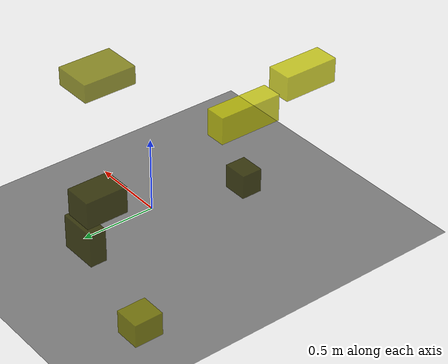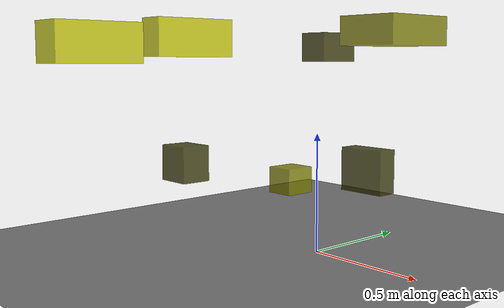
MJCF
<?xml version="1.0"?>
<mujoco model="obstacle_scene">
  <compiler angle="radian" coordinate="local"/>
  <option timestep="0.001" gravity="0 0 -9.81"/>

  <asset>
    <material name="obstacle_mat" rgba="0.8 0.8 0.0 0.8"/>
    <material name="ground_mat" rgba="0.5 0.5 0.5 1"/>
  </asset>

  <worldbody>
    <!-- Ground plane -->
    <geom name="ground" type="plane" size="3 3 0.1" material="ground_mat"/>

    <!-- Obstacles -->
    <body name="obstacle_0" pos="-0.486637 -0.319790 0.357510">
      <geom name="obs_0" type="box" size="0.079760 0.066689 0.077886" rgba="0.2 0.2 0.0 0.8"/>
    </body>
    <body name="obstacle_1" pos="0.218467 0.210810 0.922175">
      <geom name="obs_1" type="box" size="0.131532 0.177449 0.059486" rgba="0.5 0.5 0.0 0.8"/>
    </body>
    <body name="obstacle_2" pos="-0.441275 -0.792359 0.872256">
      <geom name="obs_2" type="box" size="0.081486 0.184232 0.079995" rgba="0.8 0.8 0.0 0.8"/>
    </body>
    <body name="obstacle_3" pos="-0.271509 0.664889 0.246208">
      <geom name="obs_3" type="box" size="0.125769 0.054286 0.111288" rgba="0.2 0.2 0.0 0.8"/>
    </body>
    <body name="obstacle_4" pos="-0.924766 0.761559 0.101717">
      <geom name="obs_4" type="box" size="0.082566 0.091862 0.075787" rgba="0.5 0.5 0.0 0.8"/>
    </body>
    <body name="obstacle_5" pos="-0.609031 -0.207929 0.905397">
      <geom name="obs_5" type="box" size="0.065406 0.204092 0.085945" rgba="0.8 0.8 0.0 0.8"/>
    </body>
    <body name="obstacle_6" pos="-0.748961 0.884239 0.875802">
      <geom name="obs_6" type="box" size="0.085899 0.126728 0.081030" rgba="0.2 0.2 0.0 0.8"/>
    </body>
  </worldbody>
</mujoco>
